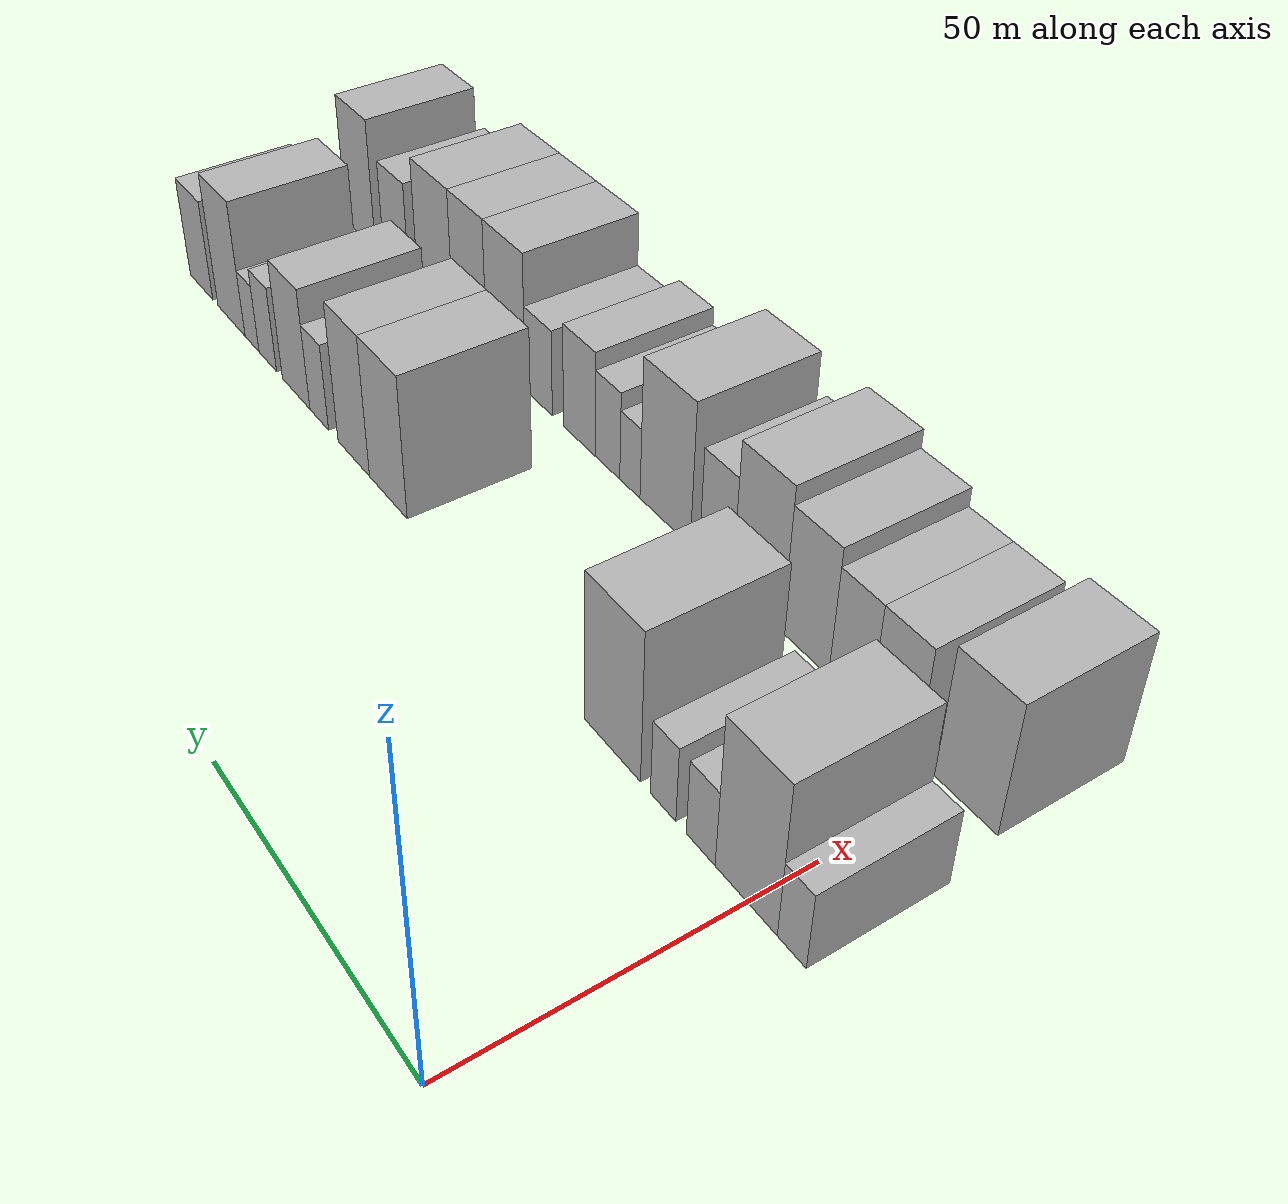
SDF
<sdf version="1.6">
 <world name="default">
  <model name="building_31">
   <static>1</static>
   <pose>50.0000 -7.6204 0 0.000000 0.000000 0.000000</pose>
   <link name="link">
    <pose>0 0 6.00 0 0 0</pose>
    <collision name="collision"><geometry><box><size>20.0000 4.8705 12.0000</size></box></geometry></collision>
    <visual name="visual">
     <cast_shadows>0</cast_shadows>
     <geometry><box><size>20.0000 4.8705 12.0000</size></box></geometry>
     <material>
      <script>
       <uri>model://HANNAS_wall/materials/scripts</uri>
       <uri>model://HANNAS_wall/materials/textures</uri>
       <name>vrc/HANNAS_wall</name>
      </script>
     </material>
    </visual>
   </link>
  </model>
  <model name="building_32">
   <static>1</static>
   <pose>50.0000 0.3281 0 0.000000 0.000000 0.000000</pose>
   <link name="link">
    <pose>0 0 12.00 0 0 0</pose>
    <collision name="collision"><geometry><box><size>20.0000 11.0267 24.0000</size></box></geometry></collision>
    <visual name="visual">
     <cast_shadows>0</cast_shadows>
     <geometry><box><size>20.0000 11.0267 24.0000</size></box></geometry>
     <material>
      <script>
       <uri>model://HANNAS_wall/materials/scripts</uri>
       <uri>model://HANNAS_wall/materials/textures</uri>
       <name>vrc/HANNAS_wall</name>
      </script>
     </material>
    </visual>
   </link>
  </model>
  <model name="building_33">
   <static>1</static>
   <pose>50.0000 8.5430 0 0.000000 0.000000 0.000000</pose>
   <link name="link">
    <pose>0 0 6.00 0 0 0</pose>
    <collision name="collision"><geometry><box><size>20.0000 5.4030 12.0000</size></box></geometry></collision>
    <visual name="visual">
     <cast_shadows>0</cast_shadows>
     <geometry><box><size>20.0000 5.4030 12.0000</size></box></geometry>
     <material>
      <script>
       <uri>model://HANNAS_wall/materials/scripts</uri>
       <uri>model://HANNAS_wall/materials/textures</uri>
       <name>vrc/HANNAS_wall</name>
      </script>
     </material>
    </visual>
   </link>
  </model>
  <model name="building_34">
   <static>1</static>
   <pose>50.0000 15.7394 0 0.000000 0.000000 0.000000</pose>
   <link name="link">
    <pose>0 0 6.00 0 0 0</pose>
    <collision name="collision"><geometry><box><size>20.0000 4.9897 12.0000</size></box></geometry></collision>
    <visual name="visual">
     <cast_shadows>0</cast_shadows>
     <geometry><box><size>20.0000 4.9897 12.0000</size></box></geometry>
     <material>
      <script>
       <uri>model://HANNAS_wall/materials/scripts</uri>
       <uri>model://HANNAS_wall/materials/textures</uri>
       <name>vrc/HANNAS_wall</name>
      </script>
     </material>
    </visual>
   </link>
  </model>
  <model name="building_35">
   <static>1</static>
   <pose>50.0000 26.1092 0 0.000000 0.000000 0.000000</pose>
   <link name="link">
    <pose>0 0 12.00 0 0 0</pose>
    <collision name="collision"><geometry><box><size>20.0000 11.7500 24.0000</size></box></geometry></collision>
    <visual name="visual">
     <cast_shadows>0</cast_shadows>
     <geometry><box><size>20.0000 11.7500 24.0000</size></box></geometry>
     <material>
      <script>
       <uri>model://HANNAS_wall/materials/scripts</uri>
       <uri>model://HANNAS_wall/materials/textures</uri>
       <name>vrc/HANNAS_wall</name>
      </script>
     </material>
    </visual>
   </link>
  </model>
  <model name="building_36">
   <static>1</static>
   <pose>50.0000 81.3536 0 0.000000 0.000000 0.000000</pose>
   <link name="link">
    <pose>0 0 12.00 0 0 0</pose>
    <collision name="collision"><geometry><box><size>20.0000 10.9129 24.0000</size></box></geometry></collision>
    <visual name="visual">
     <cast_shadows>0</cast_shadows>
     <geometry><box><size>20.0000 10.9129 24.0000</size></box></geometry>
     <material>
      <script>
       <uri>model://HANNAS_wall/materials/scripts</uri>
       <uri>model://HANNAS_wall/materials/textures</uri>
       <name>vrc/HANNAS_wall</name>
      </script>
     </material>
    </visual>
   </link>
  </model>
  <model name="building_37">
   <static>1</static>
   <pose>50.0000 91.6201 0 0.000000 0.000000 0.000000</pose>
   <link name="link">
    <pose>0 0 12.00 0 0 0</pose>
    <collision name="collision"><geometry><box><size>20.0000 9.6200 24.0000</size></box></geometry></collision>
    <visual name="visual">
     <cast_shadows>0</cast_shadows>
     <geometry><box><size>20.0000 9.6200 24.0000</size></box></geometry>
     <material>
      <script>
       <uri>model://HANNAS_wall/materials/scripts</uri>
       <uri>model://HANNAS_wall/materials/textures</uri>
       <name>vrc/HANNAS_wall</name>
      </script>
     </material>
    </visual>
   </link>
  </model>
  <model name="building_38">
   <static>1</static>
   <pose>50.0000 102.4375 0 0.000000 0.000000 0.000000</pose>
   <link name="link">
    <pose>0 0 7.50 0 0 0</pose>
    <collision name="collision"><geometry><box><size>20.0000 6.0148 15.0000</size></box></geometry></collision>
    <visual name="visual">
     <cast_shadows>0</cast_shadows>
     <geometry><box><size>20.0000 6.0148 15.0000</size></box></geometry>
     <material>
      <script>
       <uri>model://HANNAS_wall/materials/scripts</uri>
       <uri>model://HANNAS_wall/materials/textures</uri>
       <name>vrc/HANNAS_wall</name>
      </script>
     </material>
    </visual>
   </link>
  </model>
  <model name="building_39">
   <static>1</static>
   <pose>50.0000 110.0867 0 0.000000 0.000000 0.000000</pose>
   <link name="link">
    <pose>0 0 10.50 0 0 0</pose>
    <collision name="collision"><geometry><box><size>20.0000 9.2836 21.0000</size></box></geometry></collision>
    <visual name="visual">
     <cast_shadows>0</cast_shadows>
     <geometry><box><size>20.0000 9.2836 21.0000</size></box></geometry>
     <material>
      <script>
       <uri>model://HANNAS_wall/materials/scripts</uri>
       <uri>model://HANNAS_wall/materials/textures</uri>
       <name>vrc/HANNAS_wall</name>
      </script>
     </material>
    </visual>
   </link>
  </model>
  <model name="building_40">
   <static>1</static>
   <pose>50.0000 119.8254 0 0.000000 0.000000 0.000000</pose>
   <link name="link">
    <pose>0 0 7.50 0 0 0</pose>
    <collision name="collision"><geometry><box><size>20.0000 6.1937 15.0000</size></box></geometry></collision>
    <visual name="visual">
     <cast_shadows>0</cast_shadows>
     <geometry><box><size>20.0000 6.1937 15.0000</size></box></geometry>
     <material>
      <script>
       <uri>model://HANNAS_wall/materials/scripts</uri>
       <uri>model://HANNAS_wall/materials/textures</uri>
       <name>vrc/HANNAS_wall</name>
      </script>
     </material>
    </visual>
   </link>
  </model>
  <model name="building_41">
   <static>1</static>
   <pose>50.0000 125.4484 0 0.000000 0.000000 0.000000</pose>
   <link name="link">
    <pose>0 0 6.00 0 0 0</pose>
    <collision name="collision"><geometry><box><size>20.0000 5.0524 12.0000</size></box></geometry></collision>
    <visual name="visual">
     <cast_shadows>0</cast_shadows>
     <geometry><box><size>20.0000 5.0524 12.0000</size></box></geometry>
     <material>
      <script>
       <uri>model://HANNAS_wall/materials/scripts</uri>
       <uri>model://HANNAS_wall/materials/textures</uri>
       <name>vrc/HANNAS_wall</name>
      </script>
     </material>
    </visual>
   </link>
  </model>
  <model name="building_42">
   <static>1</static>
   <pose>50.0000 133.0787 0 0.000000 0.000000 0.000000</pose>
   <link name="link">
    <pose>0 0 12.00 0 0 0</pose>
    <collision name="collision"><geometry><box><size>20.0000 10.2081 24.0000</size></box></geometry></collision>
    <visual name="visual">
     <cast_shadows>0</cast_shadows>
     <geometry><box><size>20.0000 10.2081 24.0000</size></box></geometry>
     <material>
      <script>
       <uri>model://HANNAS_wall/materials/scripts</uri>
       <uri>model://HANNAS_wall/materials/textures</uri>
       <name>vrc/HANNAS_wall</name>
      </script>
     </material>
    </visual>
   </link>
  </model>
  <model name="building_43">
   <static>1</static>
   <pose>50.0000 144.6121 0 0.000000 0.000000 0.000000</pose>
   <link name="link">
    <pose>0 0 9.00 0 0 0</pose>
    <collision name="collision"><geometry><box><size>20.0000 8.8586 18.0000</size></box></geometry></collision>
    <visual name="visual">
     <cast_shadows>0</cast_shadows>
     <geometry><box><size>20.0000 8.8586 18.0000</size></box></geometry>
     <material>
      <script>
       <uri>model://HANNAS_wall/materials/scripts</uri>
       <uri>model://HANNAS_wall/materials/textures</uri>
       <name>vrc/HANNAS_wall</name>
      </script>
     </material>
    </visual>
   </link>
  </model>
  <model name="building_87">
   <static>1</static>
   <pose>79.0000 -2.9173 0 0.000000 0.000000 0.000000</pose>
   <link name="link">
    <pose>0 0 10.50 0 0 0</pose>
    <collision name="collision"><geometry><box><size>20.0000 10.4414 21.0000</size></box></geometry></collision>
    <visual name="visual">
     <cast_shadows>0</cast_shadows>
     <geometry><box><size>20.0000 10.4414 21.0000</size></box></geometry>
     <material>
      <script>
       <uri>model://HANNAS_wall/materials/scripts</uri>
       <uri>model://HANNAS_wall/materials/textures</uri>
       <name>vrc/HANNAS_wall</name>
      </script>
     </material>
    </visual>
   </link>
  </model>
  <model name="building_88">
   <static>1</static>
   <pose>79.0000 9.5362 0 0.000000 0.000000 0.000000</pose>
   <link name="link">
    <pose>0 0 9.00 0 0 0</pose>
    <collision name="collision"><geometry><box><size>20.0000 8.4656 18.0000</size></box></geometry></collision>
    <visual name="visual">
     <cast_shadows>0</cast_shadows>
     <geometry><box><size>20.0000 8.4656 18.0000</size></box></geometry>
     <material>
      <script>
       <uri>model://HANNAS_wall/materials/scripts</uri>
       <uri>model://HANNAS_wall/materials/textures</uri>
       <name>vrc/HANNAS_wall</name>
      </script>
     </material>
    </visual>
   </link>
  </model>
  <model name="building_89">
   <static>1</static>
   <pose>79.0000 17.6183 0 0.000000 0.000000 0.000000</pose>
   <link name="link">
    <pose>0 0 9.00 0 0 0</pose>
    <collision name="collision"><geometry><box><size>20.0000 7.6988 18.0000</size></box></geometry></collision>
    <visual name="visual">
     <cast_shadows>0</cast_shadows>
     <geometry><box><size>20.0000 7.6988 18.0000</size></box></geometry>
     <material>
      <script>
       <uri>model://HANNAS_wall/materials/scripts</uri>
       <uri>model://HANNAS_wall/materials/textures</uri>
       <name>vrc/HANNAS_wall</name>
      </script>
     </material>
    </visual>
   </link>
  </model>
  <model name="building_90">
   <static>1</static>
   <pose>79.0000 26.0335 0 0.000000 0.000000 0.000000</pose>
   <link name="link">
    <pose>0 0 10.50 0 0 0</pose>
    <collision name="collision"><geometry><box><size>20.0000 9.1314 21.0000</size></box></geometry></collision>
    <visual name="visual">
     <cast_shadows>0</cast_shadows>
     <geometry><box><size>20.0000 9.1314 21.0000</size></box></geometry>
     <material>
      <script>
       <uri>model://HANNAS_wall/materials/scripts</uri>
       <uri>model://HANNAS_wall/materials/textures</uri>
       <name>vrc/HANNAS_wall</name>
      </script>
     </material>
    </visual>
   </link>
  </model>
  <model name="building_91">
   <static>1</static>
   <pose>79.0000 35.8328 0 0.000000 0.000000 0.000000</pose>
   <link name="link">
    <pose>0 0 12.00 0 0 0</pose>
    <collision name="collision"><geometry><box><size>20.0000 10.4672 24.0000</size></box></geometry></collision>
    <visual name="visual">
     <cast_shadows>0</cast_shadows>
     <geometry><box><size>20.0000 10.4672 24.0000</size></box></geometry>
     <material>
      <script>
       <uri>model://HANNAS_wall/materials/scripts</uri>
       <uri>model://HANNAS_wall/materials/textures</uri>
       <name>vrc/HANNAS_wall</name>
      </script>
     </material>
    </visual>
   </link>
  </model>
  <model name="building_92">
   <static>1</static>
   <pose>79.0000 44.7057 0 0.000000 0.000000 0.000000</pose>
   <link name="link">
    <pose>0 0 9.00 0 0 0</pose>
    <collision name="collision"><geometry><box><size>20.0000 7.2788 18.0000</size></box></geometry></collision>
    <visual name="visual">
     <cast_shadows>0</cast_shadows>
     <geometry><box><size>20.0000 7.2788 18.0000</size></box></geometry>
     <material>
      <script>
       <uri>model://HANNAS_wall/materials/scripts</uri>
       <uri>model://HANNAS_wall/materials/textures</uri>
       <name>vrc/HANNAS_wall</name>
      </script>
     </material>
    </visual>
   </link>
  </model>
  <model name="building_93">
   <static>1</static>
   <pose>79.0000 56.2379 0 0.000000 0.000000 0.000000</pose>
   <link name="link">
    <pose>0 0 12.00 0 0 0</pose>
    <collision name="collision"><geometry><box><size>20.0000 11.7855 24.0000</size></box></geometry></collision>
    <visual name="visual">
     <cast_shadows>0</cast_shadows>
     <geometry><box><size>20.0000 11.7855 24.0000</size></box></geometry>
     <material>
      <script>
       <uri>model://HANNAS_wall/materials/scripts</uri>
       <uri>model://HANNAS_wall/materials/textures</uri>
       <name>vrc/HANNAS_wall</name>
      </script>
     </material>
    </visual>
   </link>
  </model>
  <model name="building_94">
   <static>1</static>
   <pose>79.0000 64.6106 0 0.000000 0.000000 0.000000</pose>
   <link name="link">
    <pose>0 0 6.00 0 0 0</pose>
    <collision name="collision"><geometry><box><size>20.0000 4.9600 12.0000</size></box></geometry></collision>
    <visual name="visual">
     <cast_shadows>0</cast_shadows>
     <geometry><box><size>20.0000 4.9600 12.0000</size></box></geometry>
     <material>
      <script>
       <uri>model://HANNAS_wall/materials/scripts</uri>
       <uri>model://HANNAS_wall/materials/textures</uri>
       <name>vrc/HANNAS_wall</name>
      </script>
     </material>
    </visual>
   </link>
  </model>
  <model name="building_95">
   <static>1</static>
   <pose>79.0000 70.2142 0 0.000000 0.000000 0.000000</pose>
   <link name="link">
    <pose>0 0 7.50 0 0 0</pose>
    <collision name="collision"><geometry><box><size>20.0000 6.2472 15.0000</size></box></geometry></collision>
    <visual name="visual">
     <cast_shadows>0</cast_shadows>
     <geometry><box><size>20.0000 6.2472 15.0000</size></box></geometry>
     <material>
      <script>
       <uri>model://HANNAS_wall/materials/scripts</uri>
       <uri>model://HANNAS_wall/materials/textures</uri>
       <name>vrc/HANNAS_wall</name>
      </script>
     </material>
    </visual>
   </link>
  </model>
  <model name="building_96">
   <static>1</static>
   <pose>79.0000 77.4870 0 0.000000 0.000000 0.000000</pose>
   <link name="link">
    <pose>0 0 9.00 0 0 0</pose>
    <collision name="collision"><geometry><box><size>20.0000 8.2982 18.0000</size></box></geometry></collision>
    <visual name="visual">
     <cast_shadows>0</cast_shadows>
     <geometry><box><size>20.0000 8.2982 18.0000</size></box></geometry>
     <material>
      <script>
       <uri>model://HANNAS_wall/materials/scripts</uri>
       <uri>model://HANNAS_wall/materials/textures</uri>
       <name>vrc/HANNAS_wall</name>
      </script>
     </material>
    </visual>
   </link>
  </model>
  <model name="building_97">
   <static>1</static>
   <pose>79.0000 88.3670 0 0.000000 0.000000 0.000000</pose>
   <link name="link">
    <pose>0 0 7.50 0 0 0</pose>
    <collision name="collision"><geometry><box><size>20.0000 7.4618 15.0000</size></box></geometry></collision>
    <visual name="visual">
     <cast_shadows>0</cast_shadows>
     <geometry><box><size>20.0000 7.4618 15.0000</size></box></geometry>
     <material>
      <script>
       <uri>model://HANNAS_wall/materials/scripts</uri>
       <uri>model://HANNAS_wall/materials/textures</uri>
       <name>vrc/HANNAS_wall</name>
      </script>
     </material>
    </visual>
   </link>
  </model>
  <model name="building_98">
   <static>1</static>
   <pose>79.0000 97.6599 0 0.000000 0.000000 0.000000</pose>
   <link name="link">
    <pose>0 0 12.00 0 0 0</pose>
    <collision name="collision"><geometry><box><size>20.0000 11.1241 24.0000</size></box></geometry></collision>
    <visual name="visual">
     <cast_shadows>0</cast_shadows>
     <geometry><box><size>20.0000 11.1241 24.0000</size></box></geometry>
     <material>
      <script>
       <uri>model://HANNAS_wall/materials/scripts</uri>
       <uri>model://HANNAS_wall/materials/textures</uri>
       <name>vrc/HANNAS_wall</name>
      </script>
     </material>
    </visual>
   </link>
  </model>
  <model name="building_99">
   <static>1</static>
   <pose>79.0000 108.3600 0 0.000000 0.000000 0.000000</pose>
   <link name="link">
    <pose>0 0 12.00 0 0 0</pose>
    <collision name="collision"><geometry><box><size>20.0000 10.2760 24.0000</size></box></geometry></collision>
    <visual name="visual">
     <cast_shadows>0</cast_shadows>
     <geometry><box><size>20.0000 10.2760 24.0000</size></box></geometry>
     <material>
      <script>
       <uri>model://HANNAS_wall/materials/scripts</uri>
       <uri>model://HANNAS_wall/materials/textures</uri>
       <name>vrc/HANNAS_wall</name>
      </script>
     </material>
    </visual>
   </link>
  </model>
  <model name="building_100">
   <static>1</static>
   <pose>79.0000 119.1718 0 0.000000 0.000000 0.000000</pose>
   <link name="link">
    <pose>0 0 12.00 0 0 0</pose>
    <collision name="collision"><geometry><box><size>20.0000 11.3477 24.0000</size></box></geometry></collision>
    <visual name="visual">
     <cast_shadows>0</cast_shadows>
     <geometry><box><size>20.0000 11.3477 24.0000</size></box></geometry>
     <material>
      <script>
       <uri>model://HANNAS_wall/materials/scripts</uri>
       <uri>model://HANNAS_wall/materials/textures</uri>
       <name>vrc/HANNAS_wall</name>
      </script>
     </material>
    </visual>
   </link>
  </model>
  <model name="building_101">
   <static>1</static>
   <pose>79.0000 132.1563 0 0.000000 0.000000 0.000000</pose>
   <link name="link">
    <pose>0 0 9.00 0 0 0</pose>
    <collision name="collision"><geometry><box><size>20.0000 8.6214 18.0000</size></box></geometry></collision>
    <visual name="visual">
     <cast_shadows>0</cast_shadows>
     <geometry><box><size>20.0000 8.6214 18.0000</size></box></geometry>
     <material>
      <script>
       <uri>model://HANNAS_wall/materials/scripts</uri>
       <uri>model://HANNAS_wall/materials/textures</uri>
       <name>vrc/HANNAS_wall</name>
      </script>
     </material>
    </visual>
   </link>
  </model>
  <model name="building_102">
   <static>1</static>
   <pose>79.0000 144.6765 0 0.000000 0.000000 0.000000</pose>
   <link name="link">
    <pose>0 0 12.00 0 0 0</pose>
    <collision name="collision"><geometry><box><size>20.0000 10.4190 24.0000</size></box></geometry></collision>
    <visual name="visual">
     <cast_shadows>0</cast_shadows>
     <geometry><box><size>20.0000 10.4190 24.0000</size></box></geometry>
     <material>
      <script>
       <uri>model://HANNAS_wall/materials/scripts</uri>
       <uri>model://HANNAS_wall/materials/textures</uri>
       <name>vrc/HANNAS_wall</name>
      </script>
     </material>
    </visual>
   </link>
  </model>
 </world>
</sdf>
